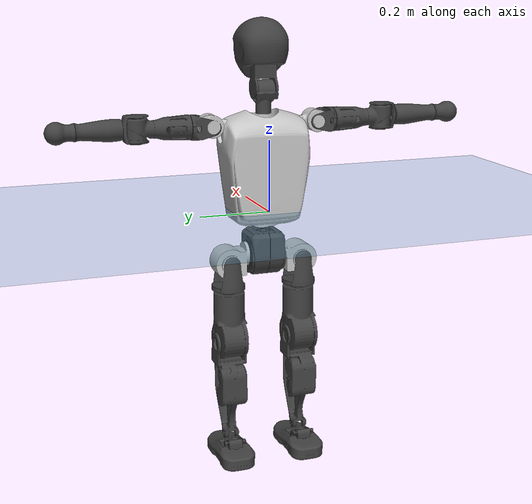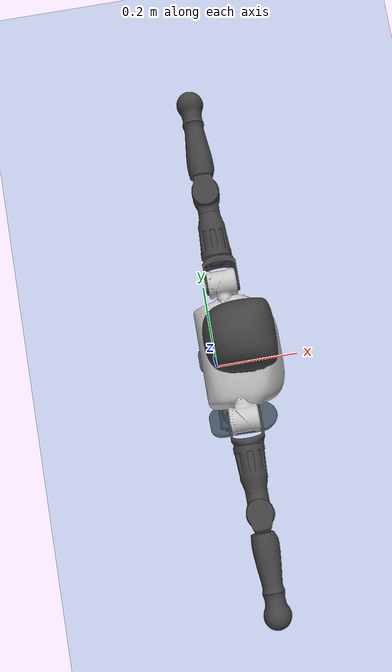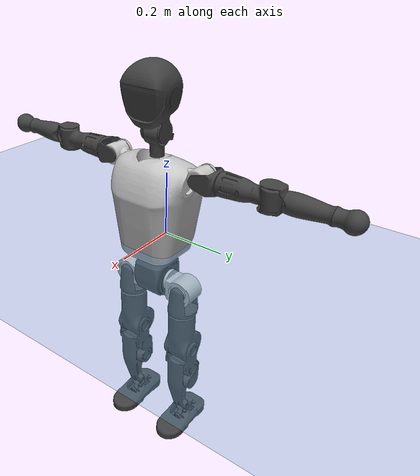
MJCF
<mujoco model="T1">
  <compiler angle="radian" assetdir="assets" balanceinertia="true" inertiafromgeom="false"/>

  <option timestep="0.005" density="1.2" viscosity="2e-05"/>

  <size nkey="1"/>

  <visual>
    <quality shadowsize="8192"/>
    <map shadowclip="0.5"/>
  </visual>

  <default>
    <default class="/">
      <joint armature="0.01" damping="0.01" frictionloss="0.1"/>
      <geom contype="0" conaffinity="0" group="1" solref="-1000 -80"/>
      <site size="0.01 0.005 0.005" group="5"/>
      <general forcelimited="true" biastype="affine" gainprm="25" biasprm="0 -25 -0.6"/>
      <default class="t1">
        <geom rgba="0.25 0.25 0.25 1"/>
        <default class="visual">
          <geom type="mesh" group="2"/>
        </default>
        <default class="collision">
          <geom group="3"/>
        </default>
        <default class="foot">
          <geom size="0.1115 0.05 0.015" type="box" condim="6" group="4" priority="1" solimp="0.015 1 0.015"/>
        </default>
        <default class="reward_collision_sphere">
          <geom group="5" rgba="1 0 0 1"/>
        </default>
      </default>
    </default>
  </default>

  <asset>
    <texture type="skybox" colorspace="auto" name="//unnamed_texture_0" builtin="gradient" rgb1="0.95 0.95 0.95" rgb2="0.95 0.95 0.95" width="100" height="600"/>
    <texture type="2d" colorspace="auto" name="texplane" builtin="checker" rgb1="0.345 0.575 0.748" rgb2="0.345 0.575 0.748" markrgb="1 1 1" width="512" height="512"/>
    <material name="MatPlane" class="/" texture="texplane" texuniform="true" texrepeat="2 2" specular="0.9"/>
    <mesh name="Trunk" class="/" file="Trunk.stl"/>
    <mesh name="H1" class="/" file="H1.stl"/>
    <mesh name="H2" class="/" file="H2.stl"/>
    <mesh name="AL1" class="/" file="AL1.stl"/>
    <mesh name="AL2" class="/" file="AL2.stl"/>
    <mesh name="AL3" class="/" file="AL3.stl"/>
    <mesh name="left_hand_link" class="/" file="left_hand_link.stl"/>
    <mesh name="AR1" class="/" file="AR1.stl"/>
    <mesh name="AR2" class="/" file="AR2.stl"/>
    <mesh name="AR3" class="/" file="AR3.stl"/>
    <mesh name="right_hand_link" class="/" file="right_hand_link.stl"/>
    <mesh name="Waist" class="/" file="Waist.stl"/>
    <mesh name="Hip_Pitch_Left" class="/" file="Hip_Pitch_Left.stl"/>
    <mesh name="Hip_Roll_Left" class="/" file="Hip_Roll_Left.stl"/>
    <mesh name="Hip_Yaw_Left" class="/" file="Hip_Yaw_Left.stl"/>
    <mesh name="Shank_Left" class="/" file="Shank_Left.stl"/>
    <mesh name="Ankle_Cross_Left" class="/" file="Ankle_Cross_Left.stl"/>
    <mesh name="left_foot_link" class="/" file="left_foot_link.stl"/>
    <mesh name="Hip_Pitch_Right" class="/" file="Hip_Pitch_Right.stl"/>
    <mesh name="Hip_Roll_Right" class="/" file="Hip_Roll_Right.stl"/>
    <mesh name="Hip_Yaw_Right" class="/" file="Hip_Yaw_Right.stl"/>
    <mesh name="Shank_Right" class="/" file="Shank_Right.stl"/>
    <mesh name="Ankle_Cross_Right" class="/" file="Ankle_Cross_Right.stl"/>
    <mesh name="right_foot_link" class="/" file="right_foot_link.stl"/>
  </asset>

  <worldbody>
    <geom name="floor" class="/" size="100 100 0.125" type="plane" group="0" material="MatPlane"/>
    <light name="toplight_shadow" class="/" pos="0 0 5" dir="0.0990148 0.0990148 -0.990148" type="directional" ambient="0.04 0.04 0.04" diffuse="0.55 0.55 0.55" specular="0.12 0.12 0.12"/>
    <light name="toplight_fill" class="/" pos="0 0 5" dir="0.0990148 0.0990148 -0.990148" type="directional" castshadow="false" ambient="0.04 0.04 0.04" diffuse="0.3 0.3 0.3" specular="0.08 0.08 0.08"/>
    <body name="trunk" childclass="t1" pos="0.000336448 0.00118792 -0.00260117" quat="0.999999 -0.00107704 0.000536024 -0.000547813">
      <inertial pos="0.0397286 -0.000378539 0.116444" quat="0.999953 -0.000166356 -0.00965902 0.000232921" mass="9.18947" diaginertia="0.0180911 0.0653989 0.0891312"/>
      <joint name="//unnamed_joint_0" type="free" armature="0" damping="0" frictionloss="0"/>
      <geom name="//unnamed_geom_1" class="visual" rgba="0.76 0.76 0.76 1" mesh="Trunk"/>
      <geom name="//unnamed_geom_2" class="collision" size="0.0702002 0.0936002 0.1404" pos="0.0436585 0 0.132827" type="box"/>
      <geom name="//unnamed_geom_3" class="reward_collision_sphere" size="0.10764" pos="0.0436585 0 0.110689"/>
      <geom name="//unnamed_geom_4" class="reward_collision_sphere" size="0.01404" pos="0.0436585 0.0827451 0"/>
      <geom name="//unnamed_geom_5" class="reward_collision_sphere" size="0.01404" pos="0.0436585 -0.0827451 0"/>
      <geom name="//unnamed_geom_6" class="reward_collision_sphere" size="0.01404" pos="0.0436585 0.104161 0.199241"/>
      <geom name="//unnamed_geom_7" class="reward_collision_sphere" size="0.01404" pos="0.0436585 -0.104161 0.199241"/>
      <site name="imu" pos="-0.0129048 -6.01561e-05 0.00053128" size="0.00936002"/>
      <camera name="track" pos="0 -1.94694 0" quat="0.707107 0.707107 0 0" mode="trackcom"/>
      <camera name="ego_camera" pos="0.0887722 0 0.464895" quat="-0.5 -0.5 0.5 0.5"/>
      <body name="H1" pos="0.0457348 -0.000254432 0.270016" quat="0.999999 -0.000453421 0.00109969 -0.000566681">
        <inertial pos="0.000655605 -0.00157272 0.0624761" quat="0.764958 -0.0138891 0.000231245 0.64393" mass="0.365161" diaginertia="4.90114e-05 0.000198998 0.000241892"/>
        <joint name="AAHead_yaw" pos="0 0 0" axis="-0.00172747 0.000925136 0.999998" range="-1.62358 1.59124" armature="0.00943934" damping="0.00697499" frictionloss="0.0911087"/>
        <geom name="//unnamed_geom_8" class="visual" mesh="H1"/>
        <body name="H2" pos="0.000580033 -0.00119211 0.0697819" quat="0.999999 -0.000700966 0.00085675 0.000775682">
          <inertial pos="0.00512178 0.000289997 0.109453" quat="0.988472 0.106469 -0.07444 -0.0777574" mass="0.498575" diaginertia="0.000405543 0.00163789 0.00285219"/>
          <joint name="Head_pitch" pos="0 0 0" axis="-0.00721282 -0.999912 0.0110999" range="-1.25734 0.402045" armature="0.0104953" damping="0.0189739" frictionloss="0.105925"/>
          <geom name="//unnamed_geom_9" class="visual" mesh="H2"/>
          <geom name="//unnamed_geom_10" class="collision" size="0.0748802" pos="0.00727641 0 0.121758"/>
          <geom name="//unnamed_geom_11" class="reward_collision_sphere" size="0.0842402" pos="0.0145528 0 0.110689"/>
        </body>
      </body>
      <body name="AL1" pos="0.0453494 0.105338 0.243787" quat="1 1.74094e-06 0.000388082 5.33005e-05">
        <inertial pos="-0.00326311 0.0437811 -0.000246639" quat="0.507121 0.500723 -0.502839 0.48914" mass="0.430247" diaginertia="0.000272219 0.00115464 0.000480384"/>
        <joint name="Left_Shoulder_Pitch" pos="0 0 0" axis="-3.96154e-06 1 1.59307e-06" stiffness="0.00178338" range="-3.29783 1.22365" armature="0.00966641" damping="0.0112406" frictionloss="0.0953468"/>
        <geom name="//unnamed_geom_12" class="visual" rgba="0.76 0.76 0.76 1" mesh="AL1"/>
        <body name="AL2" pos="0.000487568 0.0471073 -0.00263719" quat="0.999999 -0.000248603 0.000870676 0.000861306">
          <inertial pos="0.00344265 0.0363415 -0.00259676" quat="0.488947 0.511774 -0.48752 0.511216" mass="0.13456" diaginertia="8.29533e-05 0.000298221 0.000289895"/>
          <joint name="Left_Shoulder_Roll" pos="0 0 0" axis="-0.999922 -0.0101427 -0.0072627" range="-1.57302 1.76067" armature="0.00904594" damping="0.0049095" frictionloss="0.0814466"/>
          <geom name="//unnamed_geom_13" class="visual" mesh="AL2"/>
          <body name="AL3" pos="-0.00192674 0.0584654 0.00148912" quat="1 -8.64868e-05 5.96269e-05 0.000119103">
            <inertial pos="0.000711626 0.0830117 0.00220378" quat="0.706068 0.708143 0.000749265 -0.000157226" mass="0.828896" diaginertia="0.00261575 0.0111248 0.00102425"/>
            <joint name="Left_Elbow_Pitch" pos="0 0 0" axis="-0.0108505 -0.999925 -0.00575311" range="-2.28955 2.26205" armature="0.00972785" damping="0.00743083" frictionloss="0.0921093"/>
            <geom name="//unnamed_geom_14" class="visual" mesh="AL3"/>
            <geom name="//unnamed_geom_15" class="collision" size="0.0280801 0.0702002" pos="0 0.0486736 0" quat="0.707105 0.707108 0 0" type="cylinder"/>
            <geom name="//unnamed_geom_16" class="reward_collision_sphere" size="0.0336961"/>
            <body name="left_hand_link" pos="-0.000841794 0.141053 0.00311846" quat="1 -0.000231342 0.000240134 6.89226e-05">
              <inertial pos="-4.49155e-05 0.106724 0.00218657" quat="0.707073 0.707137 0.00187125 0.00131875" mass="0.278067" diaginertia="0.00166264 0.00746706 0.00036862"/>
              <joint name="Left_Elbow_Yaw" pos="0 0 0" axis="-0.0145711 -0.0029674 0.999889" range="-2.4625 0.015157" armature="0.00887745" damping="0.0139239" frictionloss="0.098723"/>
              <geom name="//unnamed_geom_17" class="visual" mesh="left_hand_link"/>
              <geom name="//unnamed_geom_18" class="collision" size="0.0280801 0.0819002" pos="0 0.126551 0" quat="0.707105 0.707108 0 0" type="cylinder"/>
              <geom name="//unnamed_geom_19" class="reward_collision_sphere" size="0.0468001"/>
              <geom name="//unnamed_geom_20" class="reward_collision_sphere" size="0.0327601" pos="0 0.107082 0"/>
              <geom name="//unnamed_geom_21" class="reward_collision_sphere" size="0.0327601" pos="0 0.209296 0"/>
            </body>
          </body>
        </body>
      </body>
      <body name="AR1" pos="0.0434147 -0.103553 0.244817" quat="0.999999 -0.000505629 0.00123187 0.000710083">
        <inertial pos="-0.00115948 -0.0440425 -0.00111828" quat="0.504166 0.496029 -0.504223 0.495511" mass="0.435393" diaginertia="0.000273833 0.00113628 0.000490366"/>
        <joint name="Right_Shoulder_Pitch" pos="0 0 0" axis="0.00238561 -0.999994 -0.00258892" range="-1.22711 3.33287" armature="0.00966002" damping="0" frictionloss="0.093106"/>
        <geom name="//unnamed_geom_22" class="visual" rgba="0.76 0.76 0.76 1" mesh="AR1"/>
        <body name="AR2" pos="-0.000256424 -0.045687 -0.000706747" quat="1 -0.000152672 -0.000638204 -4.60408e-05">
          <inertial pos="0.00316257 -0.0367594 0.00192851" quat="0.511312 0.489932 -0.51075 0.487504" mass="0.12734" diaginertia="8.45137e-05 0.000304296 0.000284764"/>
          <joint name="Right_Shoulder_Roll" pos="0 0 0" axis="-0.999983 0.000205312 0.00590323" range="-1.76043 1.56411" armature="0.00944039" damping="0.00685391" frictionloss="0.104699"/>
          <geom name="//unnamed_geom_23" class="visual" mesh="AR2"/>
          <body name="AR3" pos="-0.00158518 -0.0567183 0.000374224" quat="1 -0.000437023 -2.06522e-06 4.81993e-05">
            <inertial pos="-0.00299294 -0.0826856 -0.00104113" quat="0.709257 0.704909 0.00557964 0.00514465" mass="0.857953" diaginertia="0.00257851 0.010836 0.00102844"/>
            <joint name="Right_Elbow_Pitch" pos="0 0 0" axis="0.00125294 0.999999 0.000949006" range="-2.27881 2.26098" armature="0.0083623" damping="0.00569874" frictionloss="0.0935938"/>
            <geom name="//unnamed_geom_24" class="visual" mesh="AR3"/>
            <geom name="//unnamed_geom_25" class="collision" size="0.0280801 0.0702002" pos="0 -0.0486736 0" quat="0.707105 0.707108 0 0" type="cylinder"/>
            <geom name="//unnamed_geom_26" class="reward_collision_sphere" size="0.0336961"/>
            <body name="right_hand_link" pos="-0.000528066 -0.143329 0.00247281" quat="1 -3.50217e-05 -2.65152e-05 -2.3705e-06">
              <inertial pos="-0.0014864 -0.104666 0.00188351" quat="0.708602 0.705598 0.00324423 -0.00200101" mass="0.268565" diaginertia="0.00165009 0.00714545 0.000357179"/>
              <joint name="Right_Elbow_Yaw" pos="0 0 0" axis="-0.00592486 0.0028157 0.999978" range="-0.00381634 2.43805" armature="0.00967902" damping="0.00937316" frictionloss="0.0955397"/>
              <geom name="//unnamed_geom_27" class="visual" mesh="right_hand_link"/>
              <geom name="//unnamed_geom_28" class="collision" size="0.0280801 0.0819002" pos="0 -0.126551 0" quat="0.707105 0.707108 0 0" type="cylinder"/>
              <geom name="//unnamed_geom_29" class="reward_collision_sphere" size="0.0468001"/>
              <geom name="//unnamed_geom_30" class="reward_collision_sphere" size="0.0327601" pos="0 -0.107082 0"/>
              <geom name="//unnamed_geom_31" class="reward_collision_sphere" size="0.0327601" pos="0 -0.209296 0"/>
            </body>
          </body>
        </body>
      </body>
      <body name="Waist" pos="0.0470453 0.000527218 -0.126527" quat="1 3.90661e-05 2.35755e-05 0.00013444">
        <inertial pos="0.00252312 9.38256e-05 0.00783178" quat="0.983886 -0.00045259 -0.178758 0.00380718" mass="2.09323" diaginertia="0.00106842 0.00472082 0.00770254"/>
        <joint name="Waist" pos="0 0 0" axis="-0.00559638 -0.00337835 0.999979" range="-1.60409 1.57736" armature="0.00927337" damping="0" frictionloss="0.0946078"/>
        <geom name="//unnamed_geom_32" class="visual" mesh="Waist"/>
        <body name="Hip_Pitch_Left" pos="-4.83008e-05 0.105701 0.00244919" quat="1 -0.000119711 -6.18019e-05 -8.84428e-05">
          <inertial pos="-0.000175803 -0.00719734 -0.0228394" quat="0.975222 0.220749 0.0128722 0.00674827" mass="0.866109" diaginertia="0.000374204 0.00128743 0.00206725"/>
          <joint name="Left_Hip_Pitch" pos="0 0 0" axis="0.000116706 1 -0.000503244" range="-1.75669 1.57712" armature="0.00937939" damping="0" frictionloss="0.0831245"/>
          <geom name="//unnamed_geom_33" class="visual" rgba="0.76 0.76 0.76 1" mesh="Hip_Pitch_Left"/>
          <body name="Hip_Roll_Left" pos="0.00104791 -0.00139128 -0.0214827" quat="1 -2.05719e-05 7.61261e-05 -8.6148e-05">
            <inertial pos="-6.92055e-05 0.000927469 -0.0597397" quat="0.707234 -0.00548274 -0.00625532 0.706931" mass="0.321439" diaginertia="0.000367112 0.00136675 0.000877681"/>
            <joint name="Left_Hip_Roll" pos="0 0 0" axis="-0.999984 -0.00471906 -0.00314657" range="-1.5356 0.201362" armature="0.00934178" damping="0.0171029" frictionloss="0.0861875"/>
            <geom name="//unnamed_geom_34" class="visual" mesh="Hip_Roll_Left"/>
            <geom name="//unnamed_geom_35" class="reward_collision_sphere" size="0.0514801"/>
            <body name="Hip_Yaw_Left" pos="-0.000521721 -0.00135103 -0.0884344" quat="1 -2.48378e-06 -3.39205e-06 -8.19502e-06">
              <inertial pos="-0.00612004 0.000246685 -0.101521" quat="0.69713 -0.0368356 -0.029023 0.715409" mass="1.74982" diaginertia="0.00543536 0.0219232 0.00430465"/>
              <joint name="Left_Hip_Yaw" pos="0 0 0" axis="-0.00621751 0.00169297 -0.999979" range="-1.00837 1.04357" armature="0.0085795" damping="0.0037845" frictionloss="0.0822834"/>
              <geom name="//unnamed_geom_36" class="visual" mesh="Hip_Yaw_Left"/>
              <geom name="//unnamed_geom_37" class="collision" size="0.0468001 0.0748802" type="cylinder"/>
              <body name="Shank_Left" pos="-0.00976609 0.00242899 -0.146655" quat="0.999999 4.54602e-06 0.00062546 -0.00117864">
                <inertial pos="-0.004104 -0.00220183 -0.137037" quat="0.997528 0.00784585 -0.0334704 0.0612868" mass="1.41904" diaginertia="0.00727946 0.0301177 0.00311625"/>
                <joint name="Left_Knee_Pitch" pos="0 0 0" axis="-0.00488759 0.99997 0.00592576" range="0.0197344 2.33985" armature="0.0101367" damping="0.0159575" frictionloss="0.0819349"/>
                <geom name="//unnamed_geom_38" class="visual" mesh="Shank_Left"/>
                <geom name="//unnamed_geom_39" class="collision" size="0.0468001 0.0702002" pos="0 0 -0.132827" type="cylinder"/>
                <geom name="//unnamed_geom_40" class="reward_collision_sphere" size="0.0608401"/>
                <body name="Ankle_Cross_Left" pos="-0.0029182 0.000330524 -0.310542" quat="1 -0.000119062 0.00013672 0.000196148">
                  <inertial pos="-0.00262125 -0.000149959 -0.00834772" quat="0.447469 0.558286 0.547813 0.433577" mass="0.0585156" diaginertia="5.92248e-06 2.22073e-05 1.85528e-05"/>
                  <joint name="Left_Ankle_Pitch" pos="0 0 0" axis="0.00207708 0.999995 -0.00231907" range="-0.879211 0.301355" armature="0.00922446" damping="0.0104356" frictionloss="0.0931856"/>
                  <geom name="//unnamed_geom_41" class="visual" mesh="Ankle_Cross_Left"/>
                  <body name="left_foot_link" pos="0.00123673 0.000454313 -0.0135693" quat="1 -0.000332482 0.000282557 -0.00012756">
                    <inertial pos="-3.82065e-05 0.000267188 -0.0074147" quat="-5.56698e-05 0.620761 -0.000284705 0.783999" mass="0.558808" diaginertia="0.000543746 0.00209385 0.00364524"/>
                    <joint name="Left_Ankle_Roll" pos="0 0 0" axis="-0.999975 -0.00579173 -0.00403871" range="-0.472829 0.437296" armature="0.00939282" damping="0.0223766" frictionloss="0.0939382"/>
                    <geom name="//unnamed_geom_42" class="visual" mesh="left_foot_link"/>
                    <geom name="left_foot" class="foot" size="0.111899 0.051701 0.0145157" pos="0.00727641 0 -0.0166034"/>
                    <geom name="//unnamed_geom_44" class="reward_collision_sphere" size="0.0486721" pos="0.00727641 0 -0.0166034"/>
                    <geom name="//unnamed_geom_45" class="reward_collision_sphere" size="0.0280801" pos="0.0691259 -0.0223899 -0.0166034"/>
                    <geom name="//unnamed_geom_46" class="reward_collision_sphere" size="0.0280801" pos="-0.0509349 -0.0223899 -0.0166034"/>
                    <site name="left_foot" class="foot" pos="0.00727641 0 -0.0166034" size="0.00936002"/>
                  </body>
                </body>
              </body>
            </body>
          </body>
        </body>
        <body name="Hip_Pitch_Right" pos="-0.00288969 -0.104801 0.00208038" quat="0.999999 0.00101138 0.000101291 4.20725e-05">
          <inertial pos="0.00072836 0.00477612 -0.0209815" quat="0.973315 -0.229044 0.0136446 -0.00326276" mass="0.825558" diaginertia="0.00036238 0.00125951 0.00205752"/>
          <joint name="Right_Hip_Pitch" pos="0 0 0" axis="0.00027437 -1 -0.000375273" range="-1.54984 1.75148" armature="0.00924182" damping="0.011948" frictionloss="0.105929"/>
          <geom name="//unnamed_geom_47" class="visual" rgba="0.76 0.76 0.76 1" mesh="Hip_Pitch_Right"/>
          <body name="Hip_Roll_Right" pos="-0.00292574 -0.000195613 -0.0202666" quat="1 0.000317525 -0.000215697 0.00034578">
            <inertial pos="0.00189592 -9.43773e-05 -0.0592988" quat="0.707264 -0.0056286 -0.00584124 0.706903" mass="0.315284" diaginertia="0.000343778 0.0013152 0.000845758"/>
            <joint name="Right_Hip_Roll" pos="0 0 0" axis="-0.999974 -0.00482577 -0.00541089" stiffness="0.000755199" range="-0.176073 1.58054" armature="0.00931662" damping="0.00965198" frictionloss="0.103626"/>
            <geom name="//unnamed_geom_48" class="visual" mesh="Hip_Roll_Right"/>
            <geom name="//unnamed_geom_49" class="reward_collision_sphere" size="0.0514801"/>
            <body name="Hip_Yaw_Right" pos="0.00197515 -0.000344507 -0.0888917" quat="1 -0.000299113 -0.000305177 0.000257156">
              <inertial pos="-0.00689606 0.00227334 -0.0997123" quat="0.715643 -0.0320866 -0.0316569 0.697011" mass="1.73614" diaginertia="0.00523774 0.0211823 0.00419545"/>
              <joint name="Right_Hip_Yaw" pos="0 0 0" axis="0.000675329 -0.00103322 -0.999999" stiffness="0.00361893" range="-1.01643 1.0054" armature="0.00921168" damping="0.01796" frictionloss="0.093052"/>
              <geom name="//unnamed_geom_50" class="visual" mesh="Hip_Yaw_Right"/>
              <geom name="//unnamed_geom_51" class="collision" size="0.0468001 0.0748802" type="cylinder"/>
              <body name="Shank_Right" pos="-0.00835614 -0.000756038 -0.146057" quat="1 4.29194e-05 -4.68249e-05 -0.000246366">
                <inertial pos="-0.00706974 -0.00120604 -0.137216" quat="0.998806 -0.00594816 -0.0232984 -0.042514" mass="1.44431" diaginertia="0.00702409 0.0302 0.0031796"/>
                <joint name="Right_Knee_Pitch" pos="0 0 0" axis="0.000359709 -0.999999 -0.0016937" range="-2.34636 -0.0521718" armature="0.00941344" damping="0.00698421" frictionloss="0.0867074"/>
                <geom name="//unnamed_geom_52" class="visual" mesh="Shank_Right"/>
                <geom name="//unnamed_geom_53" class="collision" size="0.0468001 0.0702002" pos="0 0 -0.132827" type="cylinder"/>
                <geom name="//unnamed_geom_54" class="reward_collision_sphere" size="0.0608401"/>
                <body name="Ankle_Cross_Right" pos="-6.11134e-05 -0.000764203 -0.312619" quat="1 -0.000412404 -5.84599e-05 0.000120056">
                  <inertial pos="-0.00340686 -0.000108104 -0.00921598" quat="0.444781 0.552206 0.549723 0.441637" mass="0.0600914" diaginertia="5.97225e-06 2.28366e-05 1.91326e-05"/>
                  <joint name="Right_Ankle_Pitch" pos="0 0 0" axis="-9.88733e-06 -0.999994 -0.00356938" stiffness="0.000734727" range="-0.298528 0.890449" armature="0.00979726" damping="0.00338845" frictionloss="0.0921224"/>
                  <geom name="//unnamed_geom_55" class="visual" mesh="Ankle_Cross_Right"/>
                  <body name="right_foot_link" pos="0.00177617 0.00018444 -0.0127031" quat="1 2.29484e-05 -0.000109925 0.000252045">
                    <inertial pos="0.000138932 0.000439579 -0.00744037" quat="0.00120595 0.62306 0.000272703 0.782173" mass="0.566589" diaginertia="0.000549956 0.00205221 0.00367541"/>
                    <joint name="Right_Ankle_Roll" pos="0 0 0" axis="-0.999999 6.43461e-05 0.00163525" range="-0.417383 0.449526" armature="0.00906255" damping="0.00956448" frictionloss="0.105808"/>
                    <geom name="//unnamed_geom_56" class="visual" mesh="right_foot_link"/>
                    <geom name="right_foot" class="foot" size="0.103029 0.0411771 0.0155676" pos="0.00727641 0 -0.0166034"/>
                    <geom name="//unnamed_geom_58" class="reward_collision_sphere" size="0.0374401"/>
                    <geom name="//unnamed_geom_59" class="reward_collision_sphere" size="0.0280801" pos="0.00727641 0 -0.0166034"/>
                    <geom name="//unnamed_geom_60" class="reward_collision_sphere" size="0.0280801" pos="0.0691259 0.0223899 -0.0166034"/>
                    <geom name="//unnamed_geom_61" class="reward_collision_sphere" size="0.0280801" pos="-0.0509349 0.0223899 -0.0166034"/>
                    <site name="right_foot" class="foot" pos="0.00727641 0 -0.0166034" size="0.00936002"/>
                  </body>
                </body>
              </body>
            </body>
          </body>
        </body>
      </body>
    </body>
  </worldbody>

  <contact>
    <pair class="/" geom1="floor" geom2="left_foot" name="//unnamed_contact_0"/>
    <pair class="/" geom1="floor" geom2="right_foot" name="//unnamed_contact_1"/>
  </contact>

  <actuator>
    <general name="AAHead_yaw" class="/" joint="AAHead_yaw" forcerange="-6.49664 6.49664" gainprm="24.5187" biasprm="0 -24.5187 -0.548393"/>
    <general name="Head_pitch" class="/" joint="Head_pitch" forcerange="-6.53802 6.53802" gainprm="24.5187" biasprm="0 -24.5187 -0.548393"/>
    <general name="Left_Shoulder_Pitch" class="/" joint="Left_Shoulder_Pitch" forcerange="-16.8719 16.8719" gainprm="24.5187" biasprm="0 -24.5187 -0.548393"/>
    <general name="Left_Shoulder_Roll" class="/" joint="Left_Shoulder_Roll" forcerange="-16.1145 16.1145" gainprm="24.5187" biasprm="0 -24.5187 -0.548393"/>
    <general name="Left_Elbow_Pitch" class="/" joint="Left_Elbow_Pitch" forcerange="-15.4859 15.4859" gainprm="24.5187" biasprm="0 -24.5187 -0.548393"/>
    <general name="Left_Elbow_Yaw" class="/" joint="Left_Elbow_Yaw" forcerange="-17.0586 17.0586" gainprm="24.5187" biasprm="0 -24.5187 -0.548393"/>
    <general name="Right_Shoulder_Pitch" class="/" joint="Right_Shoulder_Pitch" forcerange="-16.2584 16.2584" gainprm="24.5187" biasprm="0 -24.5187 -0.548393"/>
    <general name="Right_Shoulder_Roll" class="/" joint="Right_Shoulder_Roll" forcerange="-17.4145 17.4145" gainprm="24.5187" biasprm="0 -24.5187 -0.548393"/>
    <general name="Right_Elbow_Pitch" class="/" joint="Right_Elbow_Pitch" forcerange="-16.8203 16.8203" gainprm="24.5187" biasprm="0 -24.5187 -0.548393"/>
    <general name="Right_Elbow_Yaw" class="/" joint="Right_Elbow_Yaw" forcerange="-17.1691 17.1691" gainprm="24.5187" biasprm="0 -24.5187 -0.548393"/>
    <general name="Waist" class="/" joint="Waist" forcerange="-27.9827 27.9827" gainprm="24.5187" biasprm="0 -24.5187 -0.548393"/>
    <general name="Left_Hip_Pitch" class="/" joint="Left_Hip_Pitch" forcerange="-41.7756 41.7756" gainprm="24.5187" biasprm="0 -24.5187 -0.548393"/>
    <general name="Left_Hip_Roll" class="/" joint="Left_Hip_Roll" forcerange="-30.8623 30.8623" gainprm="24.5187" biasprm="0 -24.5187 -0.548393"/>
    <general name="Left_Hip_Yaw" class="/" joint="Left_Hip_Yaw" forcerange="-27.0657 27.0657" gainprm="24.5187" biasprm="0 -24.5187 -0.548393"/>
    <general name="Left_Knee_Pitch" class="/" joint="Left_Knee_Pitch" forcerange="-61.1382 61.1382" gainprm="24.5187" biasprm="0 -24.5187 -0.548393"/>
    <general name="Left_Ankle_Pitch" class="/" joint="Left_Ankle_Pitch" forcerange="-18.1 18.1" gainprm="24.5187" biasprm="0 -24.5187 -0.548393"/>
    <general name="Left_Ankle_Roll" class="/" joint="Left_Ankle_Roll" forcerange="-13.7587 13.7587" gainprm="24.5187" biasprm="0 -24.5187 -0.548393"/>
    <general name="Right_Hip_Pitch" class="/" joint="Right_Hip_Pitch" forcerange="-38.3637 38.3637" gainprm="24.5187" biasprm="0 -24.5187 -0.548393"/>
    <general name="Right_Hip_Roll" class="/" joint="Right_Hip_Roll" forcerange="-28.2996 28.2996" gainprm="24.5187" biasprm="0 -24.5187 -0.548393"/>
    <general name="Right_Hip_Yaw" class="/" joint="Right_Hip_Yaw" forcerange="-29.3698 29.3698" gainprm="24.5187" biasprm="0 -24.5187 -0.548393"/>
    <general name="Right_Knee_Pitch" class="/" joint="Right_Knee_Pitch" forcerange="-54.8863 54.8863" gainprm="24.5187" biasprm="0 -24.5187 -0.548393"/>
    <general name="Right_Ankle_Pitch" class="/" joint="Right_Ankle_Pitch" forcerange="-18.5432 18.5432" gainprm="24.5187" biasprm="0 -24.5187 -0.548393"/>
    <general name="Right_Ankle_Roll" class="/" joint="Right_Ankle_Roll" forcerange="-13.8195 13.8195" gainprm="24.5187" biasprm="0 -24.5187 -0.548393"/>
  </actuator>

  <sensor>
    <gyro site="imu" name="imu_angular_velocity"/>
    <velocimeter site="imu" name="imu_linear_velocity"/>
    <framelinvel objtype="site" objname="left_foot" name="left_foot_global_linear_velocity"/>
    <framelinvel objtype="site" objname="right_foot" name="right_foot_global_linear_velocity"/>
  </sensor>

  <keyframe>
    <key name="home" qpos="0 0 0.6385 1 0 0 0 0 0 0 1.4 0 -0.4 0 -1.4 0 0.4 0 -0.4 0 0 0.8 -0.4 0 0.4 0 0 -0.8 0.4 0"/>
  </keyframe>
</mujoco>
